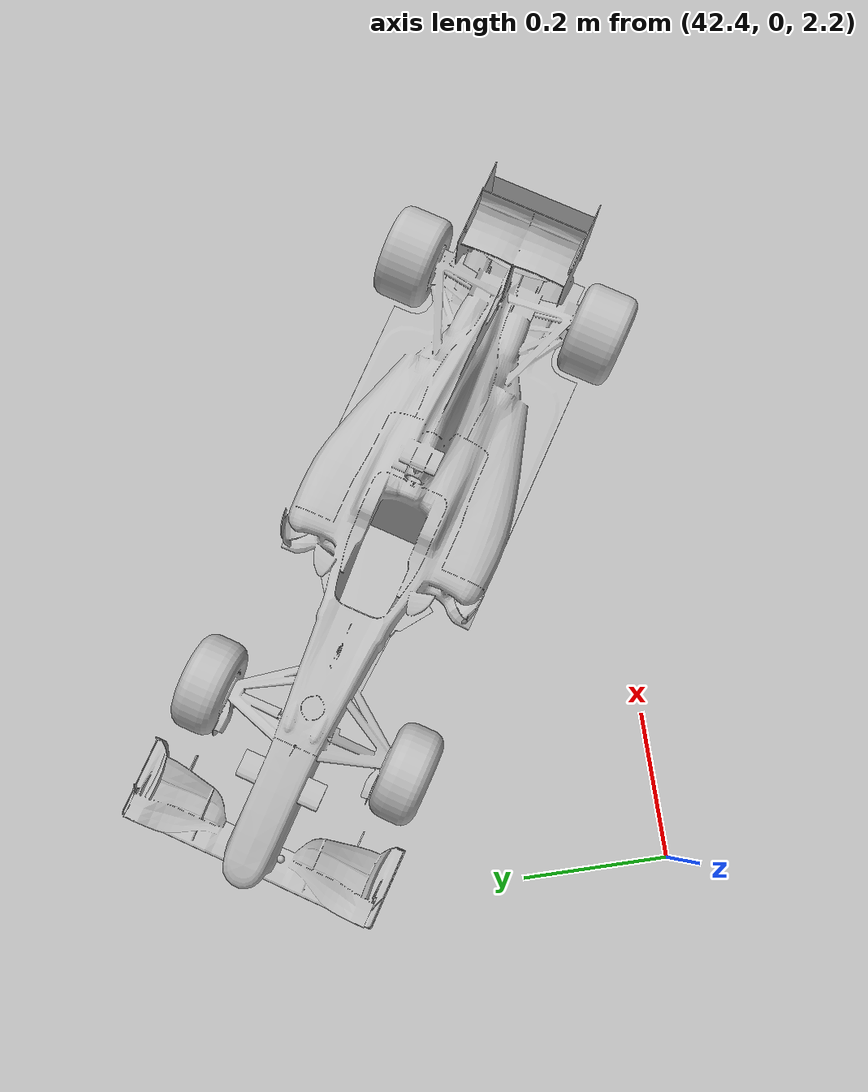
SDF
<?xml version="1.0"?>
<sdf version="1.4">
  <world name="default">
    <include>
      <uri>model://sun</uri>
    </include>
    <include>
      <uri>model://monaco_line</uri>
      <pose>0 0 0 0 0 0</pose>
    </include>
    <include>
        <uri>model://f1_renault</uri>
        <pose>42.88 0.31 2.28 0 0 2.58</pose>
    </include>

    <light name='user_directional_light_0' type='directional'>
      <pose frame=''>0.467439 -3.3788 2.45574 0.487341 -0 0</pose>
      <diffuse>0.5 0.5 0.5 1</diffuse>
      <specular>0.1 0.1 0.1 1</specular>
      <direction>0.1 0.1 -0.9</direction>
      <attenuation>
        <range>20</range>
        <constant>0.5</constant>
        <linear>0.01</linear>
        <quadratic>0.001</quadratic>
      </attenuation>
      <cast_shadows>1</cast_shadows>
    </light>
    <light name='user_directional_light_1' type='directional'>
      <pose frame=''>0.467439 -3.3788 2.45574 0.487341 -0 0</pose>
      <diffuse>0.5 0.5 0.5 1</diffuse>
      <specular>0.1 0.1 0.1 1</specular>
      <direction>0.1 0.1 -0.9</direction>
      <attenuation>
        <range>20</range>
        <constant>0.5</constant>
        <linear>0.01</linear>
        <quadratic>0.001</quadratic>
      </attenuation>
      <cast_shadows>1</cast_shadows>
    </light>

  </world>
</sdf>

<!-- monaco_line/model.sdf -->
<sdf version="1.4">
<model name="monaco">
  <static>true</static>
    <link name="monaco">
    	<pose>0 0 0 0 0 0</pose>
        <collision name="collision">
            <geometry>
               <mesh>
                  <scale>30 30 30</scale>
                  <uri>model://monaco_line/meshes/monaco_line_simple.dae</uri>
               </mesh>
            </geometry>
        </collision>
        <visual name="visual">
            <geometry>
               <mesh>
                  <scale>30 30 30</scale>
                  <uri>model://monaco_line/meshes/monaco_line_simple.dae</uri>
               </mesh>
            </geometry>
        </visual>
     </link>
</model>
</sdf>

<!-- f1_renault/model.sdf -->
<sdf version="1.9">
  <model name="f1_renault">
    <pose>0 0 0 0 0 0</pose>
    <static>false</static>

    <link name="f1">
      <pose>0 0 0 0 0 0</pose>
      <inertial>
        <mass>10</mass>
        <inertia>
          <ixx>1</ixx>
          <ixy>0.0</ixy>
          <iyy>1</iyy>
          <ixz>0.0</ixz>
          <iyz>0.0</iyz>
          <izz>1.0</izz>
        </inertia>
      </inertial>

      <collision name="collision">
        <geometry>
          <mesh>
            <uri>model://f1_renault/Renault/Car.obj</uri>
            <scale>0.2 0.2 0.2</scale>
          </mesh>
        </geometry>
      </collision>

      <visual name="visual">
        <geometry>
          <mesh>
            <uri>model://f1_renault/Renault/Car.obj</uri>
            <scale>0.2 0.2 0.2</scale>
          </mesh>
        </geometry>
      </visual>

      <visual name='left_cam'>
        <pose>0.45000 0.040000 0.1000000 0.000000 -0.000000 0.0000000</pose>
        <geometry>
          <sphere>
            <radius>.005</radius>
          </sphere>
        </geometry>
      </visual>

      <sensor name="cam_f1_left" type="camera">
        <pose>0.45000 0.040000 0.1000000 0.000000 -0.000000 0.0000000</pose>
        <always_on>true</always_on>
        <visualize>true</visualize>
        <update_rate>20.000000</update_rate>
        <topic>/cam_f1_left/image_raw</topic>
        <camera name="cleft">
          <camera_info_topic>/cam_f1_left/camera_info</camera_info_topic>
          <horizontal_fov>1.570000</horizontal_fov>
          <image>
            <width>640</width>
            <height>480</height>
            <format>R8G8B8</format>
          </image>
          <clip>
            <near>0.100000</near>
            <far>15.000000</far>
          </clip>
          <noise>
            <type>gaussian</type>
            <mean>0.0</mean>
            <stddev>0.007</stddev>
          </noise>
        </camera>
      </sensor>

    </link>

    <plugin filename="gz-sim-velocity-control-system" name="gz::sim::systems::VelocityControl">
      <topic>/F1ROS/cmd_vel</topic>
    </plugin>

    <plugin filename="gz-sim-odometry-publisher-system" name="gz::sim::systems::OdometryPublisher">
      <odom_frame>odom</odom_frame>
      <robot_base_frame>xf1</robot_base_frame>
      <odom_publish_frequency>20.0</odom_publish_frequency>
      <odom_topic>F1ROS/odom</odom_topic>
      <dimensions>3</dimensions>
    </plugin>

  </model>
</sdf>
